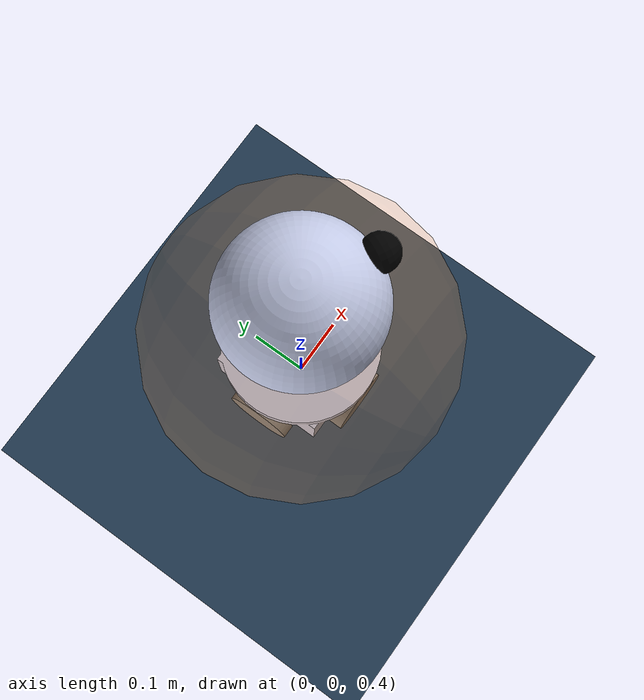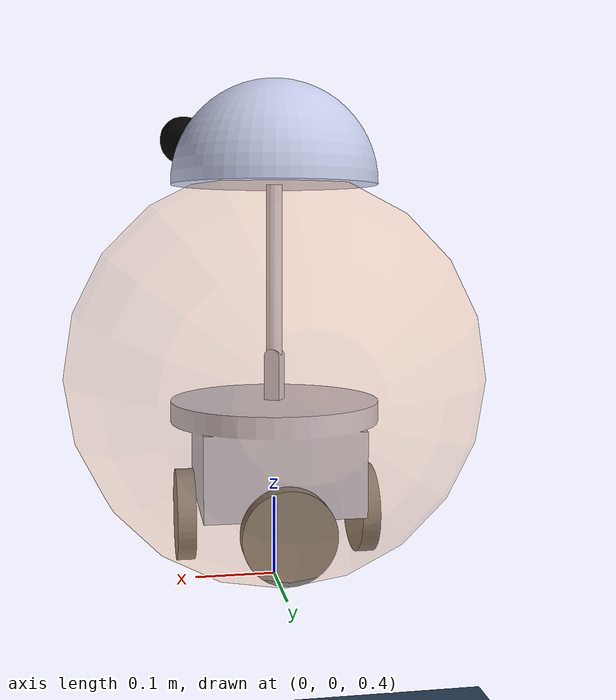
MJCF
<mujoco model="bb8_car">
  <compiler angle="radian" />
  <option timestep="0.001" integrator="implicit">
    <flag warmstart="enable" />
  </option>

  <asset>
    <mesh name="base_link" content_type="model/stl" file="base_link.STL" scale="1.3 1.3 1.3"/>
    <mesh name="a1" content_type="model/stl" file="a1.STL" />
    <mesh name="a2" content_type="model/stl" file="a2.STL" />
    <mesh name="h" content_type="model/stl" file="h.STL" scale="1.275 1.275 1.275"/>
    <mesh name="w1" content_type="model/stl" file="w1.STL" scale="1.125 1.125 1.125"/>
    <mesh name="w2" content_type="model/stl" file="w2.STL" scale="1.125 1.125 1.125"/>
    <mesh name="w3" content_type="model/stl" file="w3.STL" scale="1.125 1.125 1.125"/>
    <mesh name="w4" content_type="model/stl" file="w4.STL" scale="1.125 1.125 1.125"/>
    <texture name="grid" type="2d" builtin="checker" rgb1=".1 .2 .3" rgb2=".2 .3 .4" width="300"
      height="300" />
    <material name="grid" texture="grid" texrepeat="8 8" reflectance=".2" />
  </asset>

  <worldbody>
    <light name="top" pos="0 0 20" />
    <geom name="floor" type="plane" pos="0 0 0" size="10 10 0.1" material="grid" friction="1.0 0.005 0.0001" contype="1"
      conaffinity="1"/>

    <body name="base_link" pos="0 0 0.6" quat="-0.707107 0.707107 0 0">

      <freejoint name="base_link_freejoint" />

      <camera name="track_com" pos="1.253 -1.502 0.378"
        xyaxes="0.768 0.641 0.000 -0.101 0.122 0.987" mode="trackcom" />
      <inertial pos="-4.4409E-16 0.027063 -3.3307E-16" quat="0 0 0 1" mass="20"
        diaginertia="0.0059267 0.0098916 0.0059267" />

      <geom type="mesh" rgba="0.79216 0.81961 0.93333 1" mesh="base_link" />
      <geom name="sphere" type="sphere" pos="0 -0.05625 0" size="0.26" rgba="0.988 0.612 0.263 0.25"
        contype="0" conaffinity="0" />
      <body name="a1" pos="0 -0.02 0" quat="0.356335 0.356338 0.610757 -0.610757">
        <inertial pos="0 0 0.033964" quat="0.707107 0 0 0.707107" mass="0.027142"
          diaginertia="5.8419e-06 5.8158e-06 1.7833e-06" />
        <joint name="a1" pos="0 0 0" axis="0 0 -1" ref="0.4363" />
        <geom type="mesh" rgba="0.79216 0.81961 0.93333 1" mesh="a1" />
        <body name="a2" pos="0 0 0.06" quat="1 0 0 0">
          <inertial pos="4.0307e-08 1.6883e-08 0.12424" quat="0.999977 0 0 0.0067613"
            mass="0.072732" diaginertia="0.00032679 0.00032678 3.6454e-06" />
          <joint name="a2" pos="0 0 0" axis="1 0 0" ref="0.0"/>
          <geom type="mesh" rgba="0.79216 0.81961 0.93333 1" mesh="a2" friction = "1 1 1" condim = "6"/>
          <body name="h" pos="0 0 0.34" quat="0.51312 0.486525 0.513122 -0.486527">
            <inertial pos="0.0625 0 0" mass="0.5" diaginertia="0.0083776 0.0054323 0.0054323" />
            <joint name="h" pos="0 0 0" axis="-1 0 0" ref="0.0"/>
            <geom type="mesh" rgba="0.79216 0.81961 0.93333 1" mesh="h"/>
            <!-- black sphere on the front of the head (visual only, no collision) -->
            <geom type="sphere" pos="0.07 0.0 -0.12" size="0.03" rgba="0 0 0 1" contype="0" conaffinity="0" />
          </body>
        </body>
      </body>
      <body name="w1" pos="-0.125 0.117 0" quat="0.499998 0.5 -0.5 0.500002">
        <inertial pos="0 -0.01 0" quat="0.707107 0 0 0.707107" mass="0.15708"
          diaginertia="0.00019635 0.00010341 0.00010341" />
        <joint name="w1" pos="0 0 0" axis="0 1 0" damping="0.1" />
        <!-- w1: Red -->
        <geom type="mesh" mesh="w1" friction="0.2 0.005 0.01" condim="6" />
      </body>
      <body name="w2" pos="0 0.117 -0.125" quat="0.499998 0.5 -0.5 0.500002">
        <inertial pos="0.01 0 0" mass="0.15708" diaginertia="0.00019635 0.00010341 0.00010341" />
        <joint name="w2" pos="0 0 0" axis="-1 0 0" damping="0.1" />
        <!-- w2: Green -->
        <geom type="mesh" mesh="w2" friction="0.2 0.005 0.01" condim="6" />
      </body>
      <body name="w3" pos="0.125 0.117 0" quat="0.499998 0.5 -0.5 0.500002">
        <inertial pos="0 0.01 0" quat="0.707107 0 0 0.707107" mass="0.15708"
          diaginertia="0.00019635 0.00010341 0.00010341" />
        <joint name="w3" pos="0 0 0" axis="0 -1 0" damping="0.1" />
        <!-- w3: Blue -->
        <geom type="mesh" mesh="w3" friction="0.2 0.005 0.01" condim="6" />
      </body>
      <body name="w4" pos="0 0.117 0.125" quat="0.499998 0.5 -0.5 0.500002">
        <inertial pos="-0.01 0 0" mass="0.15708" diaginertia="0.00019635 0.00010341 0.00010341" />
        <joint name="w4" pos="0 0 0" axis="1 0 0" damping="0.1" />
        <!-- w4: Yellow -->
        <geom type="mesh" mesh="w4" friction="0.2 0.005 0.01" condim="6" />
      </body>
    </body>
  </worldbody>

  <actuator>
    <position name="a1_motor" joint="a1" kp="5" kv="1" ctrlrange="-3.14159 3.14159" />
    <position name="a2_motor" joint="a2" kp="10" kv="5" ctrlrange="-0.5236 0.5236"/>
    <position name="h_motor" joint="h" kp="5" kv="1" ctrlrange="-3.14159 3.14159" />

    <velocity name="bd_motor" joint="base_link_freejoint" kv="5" ctrlrange="-10 10"
      gear="1.375 0 0 0 0 0"  />
    <velocity name="bf_motor" joint="base_link_freejoint" kv="5" ctrlrange="-10 10"
      gear="0 1.375 0 0 0 0" />

    <velocity name="br_motor" joint="base_link_freejoint" kv="1" ctrlrange="-2 2"
      gear="0 0 0 0 1 0" />

    <!-- Original -->
  </actuator>
</mujoco>
